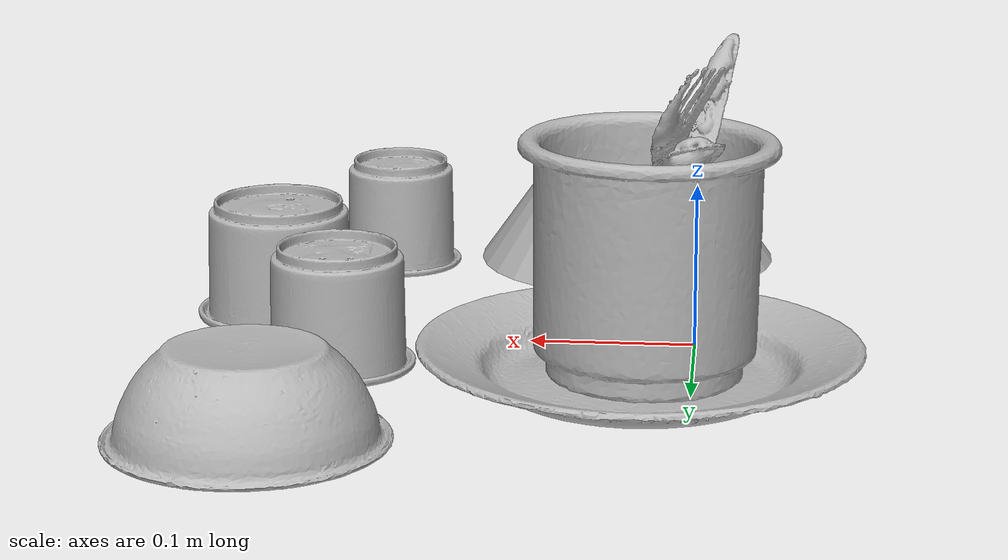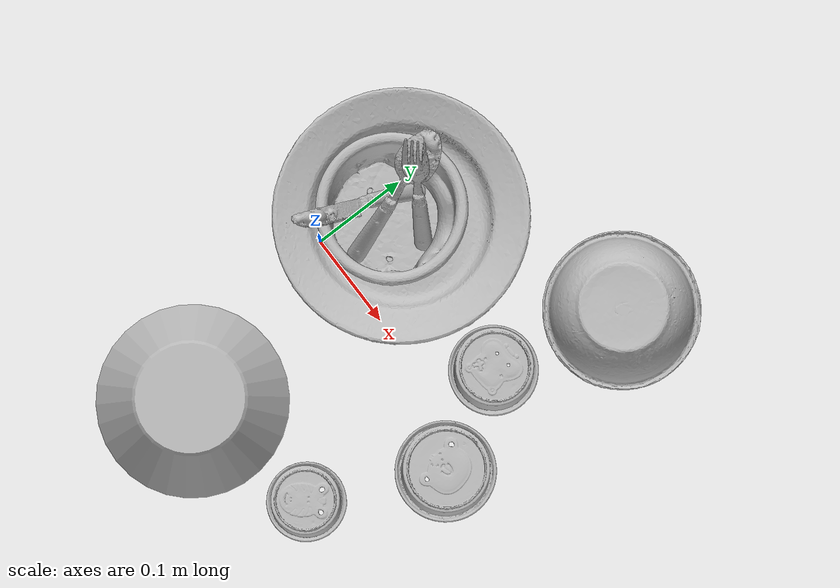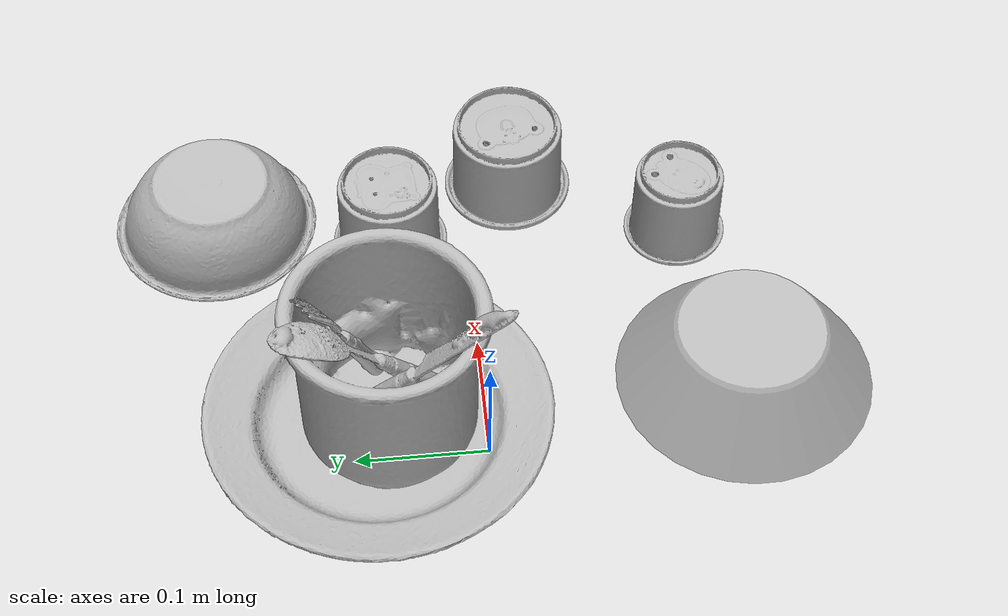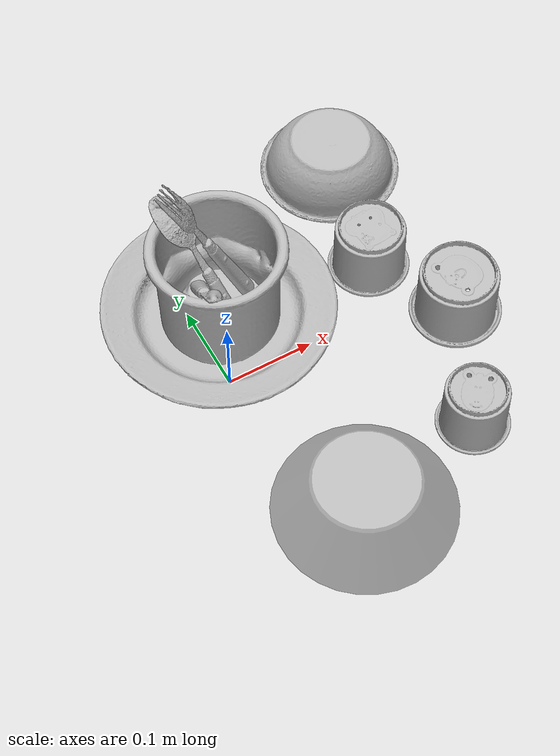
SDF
<?xml version="1.0" ?>
<sdf version="1.4">

  <world name="default">

    <light name="light1" type="point">

      <pose>0 0 1 0 0 0</pose>

      <diffuse>3 3 3 1</diffuse>

      <specular>3 3 3 1</specular>

    </light>

    <light name="light2" type="point">

      <pose>0 0.5 2 0 0 0</pose>

      <diffuse>1 1 1 1</diffuse>

      <specular>1 1 1 1</specular>

    </light>

    <light name="light3" type="point">

      <pose>0 0.5 2 0 0 0</pose>

      <diffuse>3 3 3 1</diffuse>

      <specular>3 3 3 1</specular>

    </light>

    <scene>

      <ambient>0.7 0.7 0.7</ambient>

    </scene>

    <model name="plate1">

      <link name="link_plate1">

        <collision name="default">

          <geometry>

            <mesh>

              <uri>model://plate/collision_meshes/collision.obj</uri>

              <scale>1.0 1.0 1.0</scale>

            </mesh>

          </geometry>

          <surface>

            <friction>

              <ode>

                <mu>0.5</mu>

                <mu2>0.5</mu2>

              </ode>

            </friction>

          </surface>

        </collision>

        <visual name="default">

          <geometry>

            <mesh>

              <uri>model://plate/visual_meshes/visual.dae</uri>

              <scale>1.0 1.0 1.0</scale>

            </mesh>

          </geometry>

        </visual>

        <inertial>

          <mass>0.17760059237480164</mass>

          <pose>-0.0006044625188224018 0.0002782586379908025 -0.0010561981471255422 0.0022187804018266454 -0.0032254852757079067 0.45261158451631034</pose>

          <inertia>

            <ixx>0.0008308187</ixx>

            <iyy>0.0008228725</iyy>

            <izz>0.0016249575</izz>

            <ixy>0</ixy>

            <ixz>0</ixz>

            <iyz>0</iyz>

          </inertia>

        </inertial>

      </link>

      <pose>0.029962586238980293 0.07995804399251938 0.013735003769397736 -6.378420055871367e-06 -2.7203034991165557e-05 -0.0014147740980968177</pose>

    </model>

    <model name="cup1">

      <link name="link_cup1">

        <collision name="default">

          <geometry>

            <mesh>

              <uri>model://e_cups/collision_meshes/collision.obj</uri>

              <scale>2.0 2.0 2.0</scale>

            </mesh>

          </geometry>

          <surface>

            <friction>

              <ode>

                <mu>0.5</mu>

                <mu2>0.5</mu2>

              </ode>

            </friction>

          </surface>

        </collision>

        <visual name="default">

          <geometry>

            <mesh>

              <uri>model://e_cups/visual_meshes/visual.dae</uri>

              <scale>2.0 2.0 2.0</scale>

            </mesh>

          </geometry>

        </visual>

        <inertial>

          <mass>0.744063675403595</mass>

          <pose>0.002271148143336177 0.005759569350630045 -0.007765938527882099 0.6952380949131286 0.08767384491187986 -0.5235246841726229</pose>

          <inertia>

            <ixx>0.0026243117</ixx>

            <iyy>0.0027427815</iyy>

            <izz>0.0025091455</izz>

            <ixy>0</ixy>

            <ixz>0</ixz>

            <iyz>0</iyz>

          </inertia>

        </inertial>

      </link>

      <pose>0.02744242548942566 0.07104423642158508 0.07490938901901245 0.007650000241260923 -0.010372637681351686 -0.01030602422508943</pose>

    </model>

    <model name="silverware1">

      <link name="link_silverware1">

        <collision name="default">

          <geometry>

            <mesh>

              <uri>model://knife/collision_meshes/collision.obj</uri>

              <scale>1.0 1.0 1.0</scale>

            </mesh>

          </geometry>

          <surface>

            <friction>

              <ode>

                <mu>0.5</mu>

                <mu2>0.5</mu2>

              </ode>

            </friction>

          </surface>

        </collision>

        <visual name="default">

          <geometry>

            <mesh>

              <uri>model://knife/visual_meshes/visual.dae</uri>

              <scale>1.0 1.0 1.0</scale>

            </mesh>

          </geometry>

        </visual>

        <inertial>

          <mass>0.01882243901491165</mass>

          <pose>-0.02378525212407112 0.001527512213215232 5.062019408796914e-05 0.07305335090357784 0.017248422780830937 -0.007409828138098005</pose>

          <inertia>

            <ixx>5.342572e-07</ixx>

            <iyy>7.231275e-05</iyy>

            <izz>7.248483e-05</izz>

            <ixy>0</ixy>

            <ixz>0</ixz>

            <iyz>0</iyz>

          </inertia>

        </inertial>

      </link>

      <pose>0.0032810023985803127 0.04824058711528778 0.106986865401268 3.1358266830096815 -0.8853739349875724 -1.8666102484071516</pose>

    </model>

    <model name="silverware2">

      <link name="link_silverware2">

        <collision name="default">

          <geometry>

            <mesh>

              <uri>model://fork/collision_meshes/collision.obj</uri>

              <scale>1.0 1.0 1.0</scale>

            </mesh>

          </geometry>

          <surface>

            <friction>

              <ode>

                <mu>0.5</mu>

                <mu2>0.5</mu2>

              </ode>

            </friction>

          </surface>

        </collision>

        <visual name="default">

          <geometry>

            <mesh>

              <uri>model://fork/visual_meshes/visual.dae</uri>

              <scale>1.0 1.0 1.0</scale>

            </mesh>

          </geometry>

        </visual>

        <inertial>

          <mass>0.02216319739818573</mass>

          <pose>-0.029570037499070168 0.0004658822435885668 0.0003218860365450382 -0.01355085274048469 -0.010977831838055618 0.014453900749429992</pose>

          <inertia>

            <ixx>7.769453e-07</ixx>

            <iyy>5.7861733e-05</iyy>

            <izz>5.8209254e-05</izz>

            <ixy>0</ixy>

            <ixz>0</ixz>

            <iyz>0</iyz>

          </inertia>

        </inertial>

      </link>

      <pose>0.031597692519426346 0.09983740746974945 0.11167486011981964 2.8338897813593626 -1.1264875454641456 2.6357135201962403</pose>

    </model>

    <model name="silverware3">

      <link name="link_silverware3">

        <collision name="default">

          <geometry>

            <mesh>

              <uri>model://spoon/collision_meshes/collision.obj</uri>

              <scale>1.0 1.0 1.0</scale>

            </mesh>

          </geometry>

          <surface>

            <friction>

              <ode>

                <mu>0.5</mu>

                <mu2>0.5</mu2>

              </ode>

            </friction>

          </surface>

        </collision>

        <visual name="default">

          <geometry>

            <mesh>

              <uri>model://spoon/visual_meshes/visual.dae</uri>

              <scale>1.0 1.0 1.0</scale>

            </mesh>

          </geometry>

        </visual>

        <inertial>

          <mass>0.0369713120162487</mass>

          <pose>-0.005526314955204725 -0.001603417214937508 -0.0007271651993505657 0.03521850370393077 -0.03906584809093457 0.006150612862082015</pose>

          <inertia>

            <ixx>2.0564048e-06</ixx>

            <iyy>0.00014067463</iyy>

            <izz>0.00014168874</izz>

            <ixy>0</ixy>

            <ixz>0</ixz>

            <iyz>0</iyz>

          </inertia>

        </inertial>

      </link>

      <pose>0.018493372946977615 0.07884654402732849 0.09669526666402817 -3.003198730269593 -0.8579283720823542 1.8566820593962068</pose>

    </model>

    <model name="cup3">

      <link name="link_cup3">

        <collision name="default">

          <geometry>

            <mesh>

              <uri>model://h_cups/collision_meshes/collision.obj</uri>

              <scale>1.0 1.0 1.0</scale>

            </mesh>

          </geometry>

          <surface>

            <friction>

              <ode>

                <mu>0.5</mu>

                <mu2>0.5</mu2>

              </ode>

            </friction>

          </surface>

        </collision>

        <visual name="default">

          <geometry>

            <mesh>

              <uri>model://h_cups/visual_meshes/visual.dae</uri>

              <scale>1.0 1.0 1.0</scale>

            </mesh>

          </geometry>

        </visual>

        <inertial>

          <mass>0.07650958746671677</mass>

          <pose>-2.7029362172470428e-05 0.0002301867789356038 -0.0018405390437692404 -0.02436239906192228 0.06545228304852578 0.1288505673262376</pose>

          <inertia>

            <ixx>9.880857e-05</ixx>

            <iyy>9.7629454e-05</iyy>

            <izz>0.0001036231</izz>

            <ixy>0</ixy>

            <ixz>0</ixz>

            <iyz>0</iyz>

          </inertia>

        </inertial>

      </link>

      <pose>0.20955809950828552 0.06006047874689102 0.03753000870347023 -3.141592625031163 -7.995687770705264e-08 -1.3625612295165055</pose>

    </model>

    <model name="cup4">

      <link name="link_cup4">

        <collision name="default">

          <geometry>

            <mesh>

              <uri>model://f_cups/collision_meshes/collision.obj</uri>

              <scale>1.0 1.0 1.0</scale>

            </mesh>

          </geometry>

          <surface>

            <friction>

              <ode>

                <mu>0.5</mu>

                <mu2>0.5</mu2>

              </ode>

            </friction>

          </surface>

        </collision>

        <visual name="default">

          <geometry>

            <mesh>

              <uri>model://f_cups/visual_meshes/visual.dae</uri>

              <scale>1.0 1.0 1.0</scale>

            </mesh>

          </geometry>

        </visual>

        <inertial>

          <mass>0.06643713265657425</mass>

          <pose>-0.003171468386426568 -0.0006240070797502995 -0.003655537962913513 0.7862285241405351 -0.26079358215919657 -0.18237309734404591</pose>

          <inertia>

            <ixx>6.2452695e-05</ixx>

            <iyy>6.551358e-05</iyy>

            <izz>6.820148e-05</izz>

            <ixy>0</ixy>

            <ixz>0</ixz>

            <iyz>0</iyz>

          </inertia>

        </inertial>

      </link>

      <pose>0.2007124274969101 -0.1699468344449997 0.036304011940956116 -3.1415925656685286 -1.3038317338911366e-08 -0.053078616821356985</pose>

    </model>

    <model name="cup5">

      <link name="link_cup5">

        <collision name="default">

          <geometry>

            <mesh>

              <uri>model://j_cups/collision_meshes/collision.obj</uri>

              <scale>1.0 1.0 1.0</scale>

            </mesh>

          </geometry>

          <surface>

            <friction>

              <ode>

                <mu>0.5</mu>

                <mu2>0.5</mu2>

              </ode>

            </friction>

          </surface>

        </collision>

        <visual name="default">

          <geometry>

            <mesh>

              <uri>model://j_cups/visual_meshes/visual.dae</uri>

              <scale>1.0 1.0 1.0</scale>

            </mesh>

          </geometry>

        </visual>

        <inertial>

          <mass>0.12178023159503937</mass>

          <pose>0.0006164865335449576 0.000539897009730339 -0.001347901183180511 0.03030406613159603 0.03757978252187804 0.4386981755119238</pose>

          <inertia>

            <ixx>0.0001788119</ixx>

            <iyy>0.00018067128</iyy>

            <izz>0.00020613305</izz>

            <ixy>0</ixy>

            <ixz>0</ixz>

            <iyz>0</iyz>

          </inertia>

        </inertial>

      </link>

      <pose>0.2611864507198334 -0.03984881564974785 0.037998002022504807 -3.1398569632852373 0.006374336282357642 1.6792460962931295</pose>

    </model>

    <model name="bowl1">

      <link name="link_bowl1">

        <collision name="default">

          <geometry>

            <mesh>

              <uri>model://bowl/collision_meshes/collision.obj</uri>

              <scale>1.0 1.0 1.0</scale>

            </mesh>

          </geometry>

          <surface>

            <friction>

              <ode>

                <mu>0.5</mu>

                <mu2>0.5</mu2>

              </ode>

            </friction>

          </surface>

        </collision>

        <visual name="default">

          <geometry>

            <mesh>

              <uri>model://bowl/visual_meshes/visual.dae</uri>

              <scale>1.0 1.0 1.0</scale>

            </mesh>

          </geometry>

        </visual>

        <inertial>

          <mass>0.07745425403118134</mass>

          <pose>0.0002044533030129969 -0.001030205748975277 -0.0008042643312364817 -0.015764104528614948 0.014546761750555465 0.7140386532433999</pose>

          <inertia>

            <ixx>0.00017791858</ixx>

            <iyy>0.0001739432</iyy>

            <izz>0.00029932024</izz>

            <ixy>0</ixy>

            <ixz>0</ixz>

            <iyz>0</iyz>

          </inertia>

        </inertial>

      </link>

      <pose>0.23988616466522217 0.1999097317457199 0.027247348800301552 -3.1327237935621888 0.0006755072199302221 -0.19280347698850003</pose>

    </model>

    <model name="bowl2">

      <link name="link_bowl2">

        <collision name="default">

          <geometry>

            <mesh>

              <uri>model://bowl_a/collision_meshes/collision.obj</uri>

              <scale>1.0 1.0 1.0</scale>

            </mesh>

          </geometry>

          <surface>

            <friction>

              <ode>

                <mu>0.5</mu>

                <mu2>0.5</mu2>

              </ode>

            </friction>

          </surface>

        </collision>

        <visual name="default">

          <geometry>

            <mesh>

              <uri>model://bowl_a/visual_meshes/visual.dae</uri>

              <scale>1.0 1.0 1.0</scale>

            </mesh>

          </geometry>

        </visual>

        <inertial>

          <mass>0.3088552951812744</mass>

          <pose>0.00027867488097399473 4.730938235297799e-05 -0.0013765291078016162 -0.0009805400563029818 -0.0010938222386440513 -0.19123616665791646</pose>

          <inertia>

            <ixx>0.0008793254</ixx>

            <iyy>0.00088472397</iyy>

            <izz>0.0015639137</izz>

            <ixy>0</ixy>

            <ixz>0</ixz>

            <iyz>0</iyz>

          </inertia>

        </inertial>

      </link>

      <pose>0.0500139519572258 -0.19996100664138794 0.030102035030722618 -3.141592640658239 -3.563441077105533e-08 1.16891460525067</pose>

    </model>

  </world>

</sdf>
